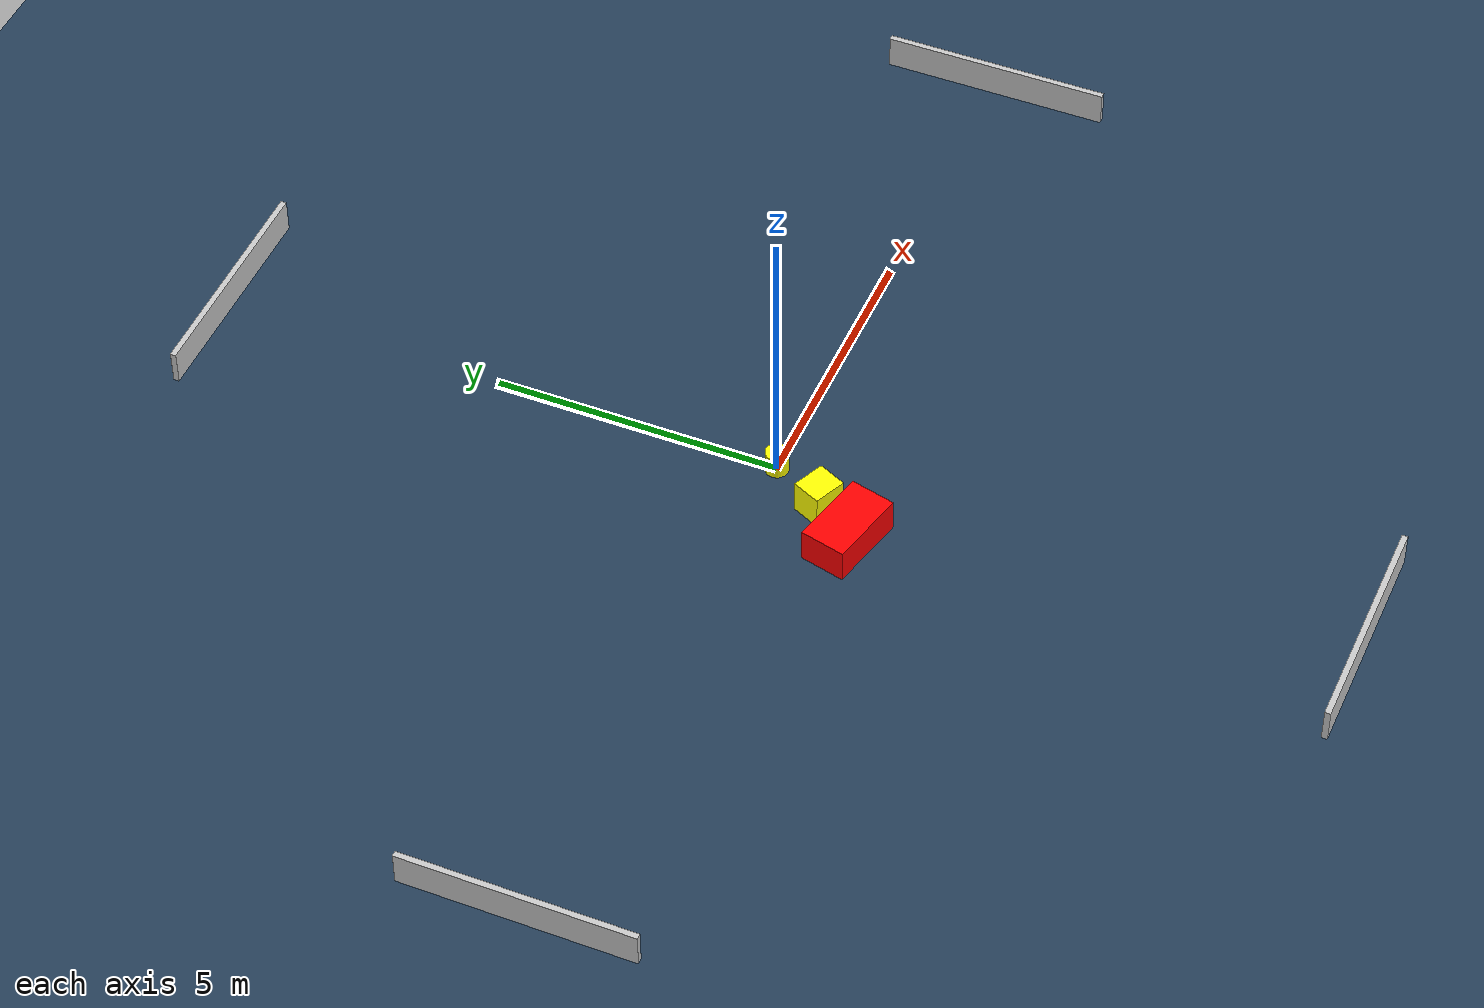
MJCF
<?xml version="1.0" ?>
<mujoco model="generated_environment">
  <option timestep="0.01" integrator="RK4" cone="elliptic"/>
  <default>
    <geom density="1"/>
  </default>
  <asset>
    <texture builtin="gradient" height="3072" name="skybox" rgb1="0.3 0.5 0.7" rgb2="0 0 0" type="skybox" width="512"/>
    <texture builtin="checker" height="300" name="groundplane" rgb1="0.2 0.3 0.4" rgb2="0.1 0.2 0.3" type="2d" width="300"/>
    <material name="groundplane" reflectance="0.2" texrepeat="5 5" texture="groundplane"/>
  </asset>
  <worldbody>
    <light dir="0 0 -1" directional="true" pos="0 0 1.5"/>
    <geom condim="3" friction="0.5 0.005 0.001" material="groundplane" name="floor" pos="0 0 0" size="0 0 0.05" type="plane"/>
    <body name="walls">
      <geom name="wall_1" condim="4" pos="-10.0 0.0 0.3" rgba="0.800000011920929 0.800000011920929 0.800000011920929 1.0" size="0.05 2.0 0.3" type="box"/>
      <geom name="wall_2" condim="4" pos="10.0 0.0 0.3" rgba="0.800000011920929 0.800000011920929 0.800000011920929 1.0" size="0.05 2.0 0.3" type="box"/>
      <geom name="wall_3" condim="4" pos="0.0 -10.0 0.3" rgba="0.800000011920929 0.800000011920929 0.800000011920929 1.0" size="2.0 0.05 0.3" type="box"/>
      <geom name="wall_4" condim="4" pos="0.0 10.0 0.3" rgba="0.800000011920929 0.800000011920929 0.800000011920929 1.0" size="2.0 0.05 0.3" type="box"/>
    </body>
    <body name="robot">
      <joint name="joint_x" type="slide" pos="0 0 0" axis="1 0 0"/>
      <joint name="joint_y" type="slide" pos="0 0 0" axis="0 1 0"/>
      <geom name="robot" type="cylinder" pos="0.0 0.0 0.2" size="0.2 0.2 0.0" mass="5.0" friction="1.0 0.005 0.0001" condim="4" rgba="1.0 1.0 0.0 1.0"/>
    </body>
    <body name="obstacle_1_movable">
      <geom name="obstacle_1_movable" condim="4" pos="-0.5513669360036748 -0.9674258479625669 0.3" euler="0 0 155.43638726862588" friction="0.0 0.005 0.001" rgba="1.0 1.0 0.0 1.0" size="0.29494768955931466 0.26185413187771533 0.3" type="box" mass="0.1"/>
      <joint type="free"/>
    </body>
    <body name="obstacle_2_static">
      <geom name="obstacle_2_static" condim="4" pos="-1.0657130937693853 -1.6720303808049166 0.3" euler="0 0 166.21259144376944" friction="0.0 0.005 0.001" rgba="1.0 0.0 0.0 1.0" size="0.6960481054893085 0.4017477744291894 0.3" type="box"/>
    </body>
  </worldbody>
  <actuator>
    <motor name="actuator_x" joint="joint_x" gear="1" ctrlrange="-1 1"/>
    <motor name="actuator_y" joint="joint_y" gear="1" ctrlrange="-1 1"/>
  </actuator>
</mujoco>
